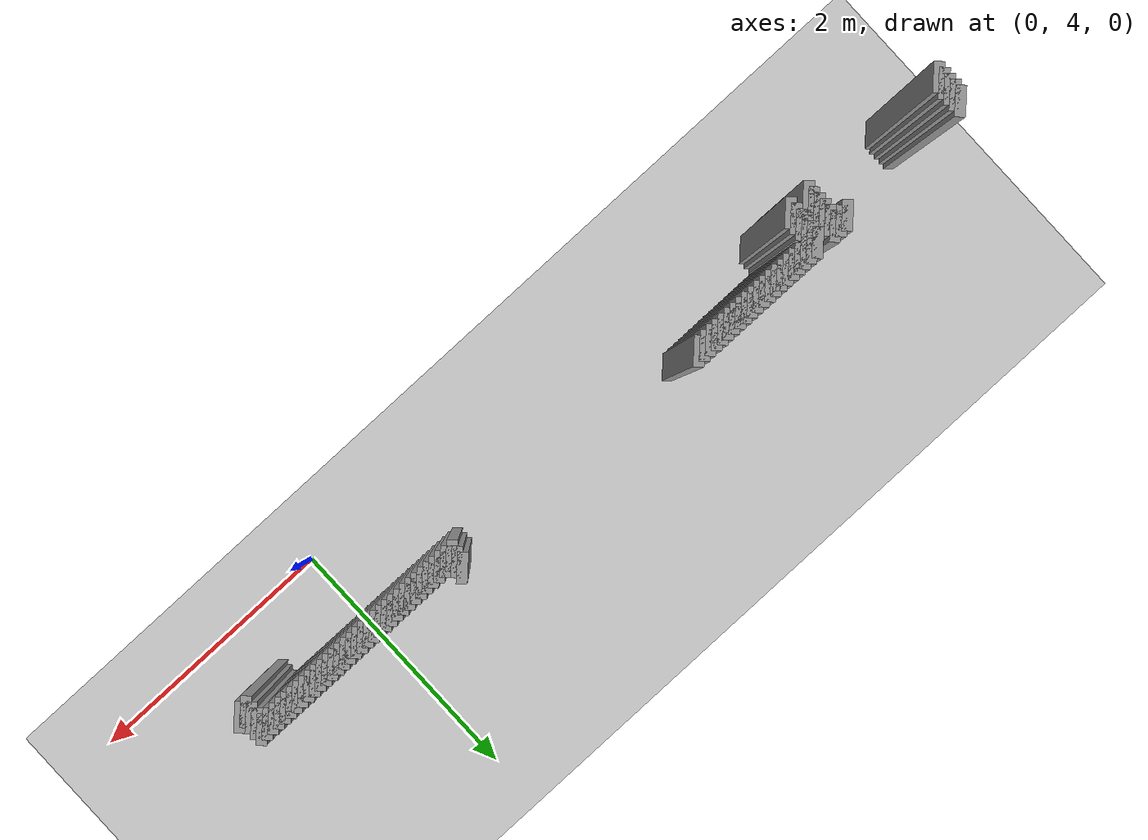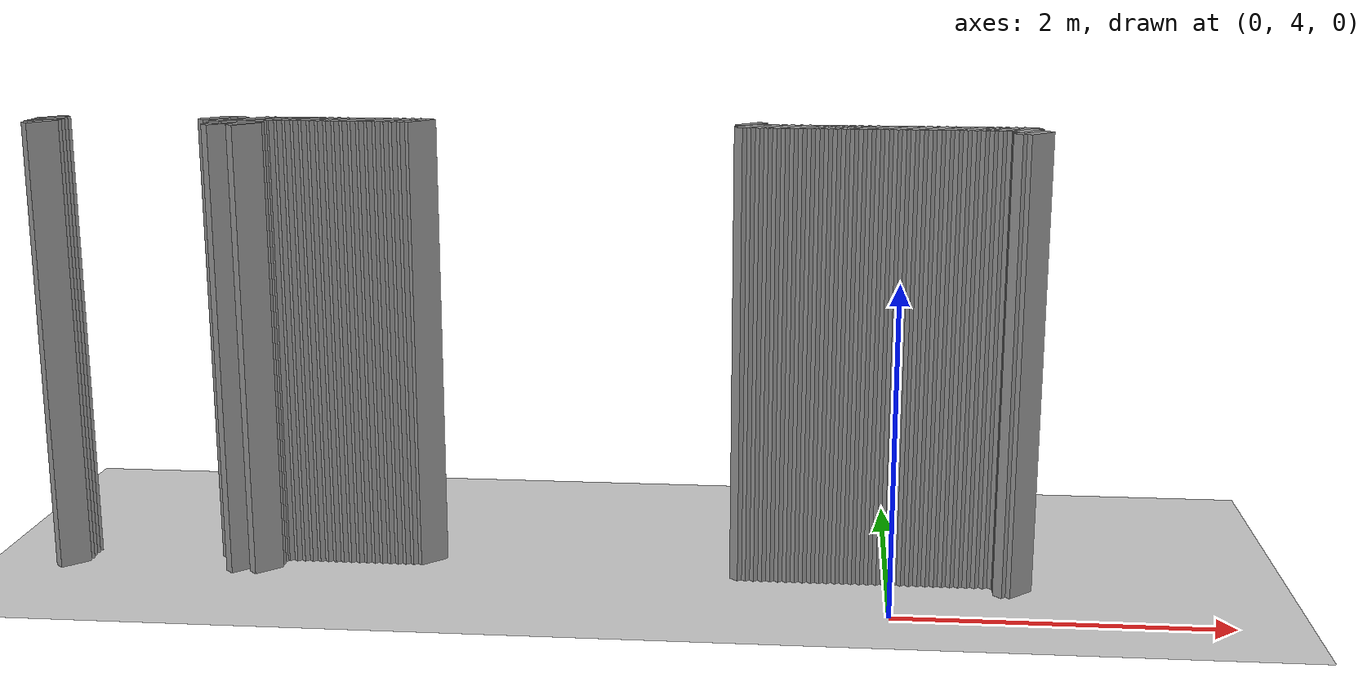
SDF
<sdf version="1.5">
 <world name="default">
  <include><uri>model://ground_plane</uri></include>
  <include><uri>model://sun</uri></include>
  <model name="grey_wall_80">
   <static>1</static>
   <link name="link">
    <pose>-4.125 4.725  1.4 0 0 -0.785398163397</pose>
    <collision name="collision"><geometry><box><size>0.0707106781187 .2  2.8</size></box></geometry></collision>
    <visual name="visual">
     <cast_shadows>0</cast_shadows>
     <geometry><box><size>0.0707106781187 .2  2.8</size></box></geometry>
     <material>
      <script>
       <uri>model://grey_wall/materials/scripts</uri>
       <uri>model://grey_wall/materials/textures</uri>
       <name>vrc/grey_wall</name>
      </script>
     </material>
    </visual>
   </link>
  </model>
  <model name="grey_wall_81">
   <static>1</static>
   <link name="link">
    <pose>-4.075 4.725  1.4 0 0 -0.785398163397</pose>
    <collision name="collision"><geometry><box><size>0.0707106781187 .2  2.8</size></box></geometry></collision>
    <visual name="visual">
     <cast_shadows>0</cast_shadows>
     <geometry><box><size>0.0707106781187 .2  2.8</size></box></geometry>
     <material>
      <script>
       <uri>model://grey_wall/materials/scripts</uri>
       <uri>model://grey_wall/materials/textures</uri>
       <name>vrc/grey_wall</name>
      </script>
     </material>
    </visual>
   </link>
  </model>
  <model name="grey_wall_82">
   <static>1</static>
   <link name="link">
    <pose>-4.025 4.725  1.4 0 0 -0.785398163397</pose>
    <collision name="collision"><geometry><box><size>0.0707106781187 .2  2.8</size></box></geometry></collision>
    <visual name="visual">
     <cast_shadows>0</cast_shadows>
     <geometry><box><size>0.0707106781187 .2  2.8</size></box></geometry>
     <material>
      <script>
       <uri>model://grey_wall/materials/scripts</uri>
       <uri>model://grey_wall/materials/textures</uri>
       <name>vrc/grey_wall</name>
      </script>
     </material>
    </visual>
   </link>
  </model>
  <model name="grey_wall_83">
   <static>1</static>
   <link name="link">
    <pose>-3.875 4.725  1.4 0 0 -0.785398163397</pose>
    <collision name="collision"><geometry><box><size>0.0707106781187 .2  2.8</size></box></geometry></collision>
    <visual name="visual">
     <cast_shadows>0</cast_shadows>
     <geometry><box><size>0.0707106781187 .2  2.8</size></box></geometry>
     <material>
      <script>
       <uri>model://grey_wall/materials/scripts</uri>
       <uri>model://grey_wall/materials/textures</uri>
       <name>vrc/grey_wall</name>
      </script>
     </material>
    </visual>
   </link>
  </model>
  <model name="grey_wall_84">
   <static>1</static>
   <link name="link">
    <pose>-3.825 4.725  1.4 0 0 -0.785398163397</pose>
    <collision name="collision"><geometry><box><size>0.0707106781187 .2  2.8</size></box></geometry></collision>
    <visual name="visual">
     <cast_shadows>0</cast_shadows>
     <geometry><box><size>0.0707106781187 .2  2.8</size></box></geometry>
     <material>
      <script>
       <uri>model://grey_wall/materials/scripts</uri>
       <uri>model://grey_wall/materials/textures</uri>
       <name>vrc/grey_wall</name>
      </script>
     </material>
    </visual>
   </link>
  </model>
  <model name="grey_wall_85">
   <static>1</static>
   <link name="link">
    <pose>-3.775 4.725  1.4 0 0 -0.785398163397</pose>
    <collision name="collision"><geometry><box><size>0.0707106781187 .2  2.8</size></box></geometry></collision>
    <visual name="visual">
     <cast_shadows>0</cast_shadows>
     <geometry><box><size>0.0707106781187 .2  2.8</size></box></geometry>
     <material>
      <script>
       <uri>model://grey_wall/materials/scripts</uri>
       <uri>model://grey_wall/materials/textures</uri>
       <name>vrc/grey_wall</name>
      </script>
     </material>
    </visual>
   </link>
  </model>
  <model name="grey_wall_86">
   <static>1</static>
   <link name="link">
    <pose>-3.725 4.725  1.4 0 0 -0.785398163397</pose>
    <collision name="collision"><geometry><box><size>0.0707106781187 .2  2.8</size></box></geometry></collision>
    <visual name="visual">
     <cast_shadows>0</cast_shadows>
     <geometry><box><size>0.0707106781187 .2  2.8</size></box></geometry>
     <material>
      <script>
       <uri>model://grey_wall/materials/scripts</uri>
       <uri>model://grey_wall/materials/textures</uri>
       <name>vrc/grey_wall</name>
      </script>
     </material>
    </visual>
   </link>
  </model>
  <model name="grey_wall_87">
   <static>1</static>
   <link name="link">
    <pose>-3.675 4.725  1.4 0 0 -0.785398163397</pose>
    <collision name="collision"><geometry><box><size>0.0707106781187 .2  2.8</size></box></geometry></collision>
    <visual name="visual">
     <cast_shadows>0</cast_shadows>
     <geometry><box><size>0.0707106781187 .2  2.8</size></box></geometry>
     <material>
      <script>
       <uri>model://grey_wall/materials/scripts</uri>
       <uri>model://grey_wall/materials/textures</uri>
       <name>vrc/grey_wall</name>
      </script>
     </material>
    </visual>
   </link>
  </model>
  <model name="grey_wall_88">
   <static>1</static>
   <link name="link">
    <pose>-3.625 4.725  1.4 0 0 -0.785398163397</pose>
    <collision name="collision"><geometry><box><size>0.0707106781187 .2  2.8</size></box></geometry></collision>
    <visual name="visual">
     <cast_shadows>0</cast_shadows>
     <geometry><box><size>0.0707106781187 .2  2.8</size></box></geometry>
     <material>
      <script>
       <uri>model://grey_wall/materials/scripts</uri>
       <uri>model://grey_wall/materials/textures</uri>
       <name>vrc/grey_wall</name>
      </script>
     </material>
    </visual>
   </link>
  </model>
  <model name="grey_wall_89">
   <static>1</static>
   <link name="link">
    <pose>-3.575 4.725  1.4 0 0 -0.785398163397</pose>
    <collision name="collision"><geometry><box><size>0.0707106781187 .2  2.8</size></box></geometry></collision>
    <visual name="visual">
     <cast_shadows>0</cast_shadows>
     <geometry><box><size>0.0707106781187 .2  2.8</size></box></geometry>
     <material>
      <script>
       <uri>model://grey_wall/materials/scripts</uri>
       <uri>model://grey_wall/materials/textures</uri>
       <name>vrc/grey_wall</name>
      </script>
     </material>
    </visual>
   </link>
  </model>
  <model name="grey_wall_90">
   <static>1</static>
   <link name="link">
    <pose>-3.525 4.725  1.4 0 0 -0.785398163397</pose>
    <collision name="collision"><geometry><box><size>0.0707106781187 .2  2.8</size></box></geometry></collision>
    <visual name="visual">
     <cast_shadows>0</cast_shadows>
     <geometry><box><size>0.0707106781187 .2  2.8</size></box></geometry>
     <material>
      <script>
       <uri>model://grey_wall/materials/scripts</uri>
       <uri>model://grey_wall/materials/textures</uri>
       <name>vrc/grey_wall</name>
      </script>
     </material>
    </visual>
   </link>
  </model>
  <model name="grey_wall_91">
   <static>1</static>
   <link name="link">
    <pose>-3.475 4.725  1.4 0 0 -0.785398163397</pose>
    <collision name="collision"><geometry><box><size>0.0707106781187 .2  2.8</size></box></geometry></collision>
    <visual name="visual">
     <cast_shadows>0</cast_shadows>
     <geometry><box><size>0.0707106781187 .2  2.8</size></box></geometry>
     <material>
      <script>
       <uri>model://grey_wall/materials/scripts</uri>
       <uri>model://grey_wall/materials/textures</uri>
       <name>vrc/grey_wall</name>
      </script>
     </material>
    </visual>
   </link>
  </model>
  <model name="grey_wall_92">
   <static>1</static>
   <link name="link">
    <pose>-3.425 4.725  1.4 0 0 -0.785398163397</pose>
    <collision name="collision"><geometry><box><size>0.0707106781187 .2  2.8</size></box></geometry></collision>
    <visual name="visual">
     <cast_shadows>0</cast_shadows>
     <geometry><box><size>0.0707106781187 .2  2.8</size></box></geometry>
     <material>
      <script>
       <uri>model://grey_wall/materials/scripts</uri>
       <uri>model://grey_wall/materials/textures</uri>
       <name>vrc/grey_wall</name>
      </script>
     </material>
    </visual>
   </link>
  </model>
  <model name="grey_wall_93">
   <static>1</static>
   <link name="link">
    <pose>-3.375 4.725  1.4 0 0 -0.785398163397</pose>
    <collision name="collision"><geometry><box><size>0.0707106781187 .2  2.8</size></box></geometry></collision>
    <visual name="visual">
     <cast_shadows>0</cast_shadows>
     <geometry><box><size>0.0707106781187 .2  2.8</size></box></geometry>
     <material>
      <script>
       <uri>model://grey_wall/materials/scripts</uri>
       <uri>model://grey_wall/materials/textures</uri>
       <name>vrc/grey_wall</name>
      </script>
     </material>
    </visual>
   </link>
  </model>
  <model name="grey_wall_94">
   <static>1</static>
   <link name="link">
    <pose>-3.325 4.725  1.4 0 0 -0.785398163397</pose>
    <collision name="collision"><geometry><box><size>0.0707106781187 .2  2.8</size></box></geometry></collision>
    <visual name="visual">
     <cast_shadows>0</cast_shadows>
     <geometry><box><size>0.0707106781187 .2  2.8</size></box></geometry>
     <material>
      <script>
       <uri>model://grey_wall/materials/scripts</uri>
       <uri>model://grey_wall/materials/textures</uri>
       <name>vrc/grey_wall</name>
      </script>
     </material>
    </visual>
   </link>
  </model>
  <model name="grey_wall_95">
   <static>1</static>
   <link name="link">
    <pose>-3.275 4.725  1.4 0 0 -0.785398163397</pose>
    <collision name="collision"><geometry><box><size>0.0707106781187 .2  2.8</size></box></geometry></collision>
    <visual name="visual">
     <cast_shadows>0</cast_shadows>
     <geometry><box><size>0.0707106781187 .2  2.8</size></box></geometry>
     <material>
      <script>
       <uri>model://grey_wall/materials/scripts</uri>
       <uri>model://grey_wall/materials/textures</uri>
       <name>vrc/grey_wall</name>
      </script>
     </material>
    </visual>
   </link>
  </model>
  <model name="grey_wall_96">
   <static>1</static>
   <link name="link">
    <pose>-3.225 4.725  1.4 0 0 -0.785398163397</pose>
    <collision name="collision"><geometry><box><size>0.0707106781187 .2  2.8</size></box></geometry></collision>
    <visual name="visual">
     <cast_shadows>0</cast_shadows>
     <geometry><box><size>0.0707106781187 .2  2.8</size></box></geometry>
     <material>
      <script>
       <uri>model://grey_wall/materials/scripts</uri>
       <uri>model://grey_wall/materials/textures</uri>
       <name>vrc/grey_wall</name>
      </script>
     </material>
    </visual>
   </link>
  </model>
  <model name="grey_wall_97">
   <static>1</static>
   <link name="link">
    <pose>-3.175 4.725  1.4 0 0 -0.785398163397</pose>
    <collision name="collision"><geometry><box><size>0.0707106781187 .2  2.8</size></box></geometry></collision>
    <visual name="visual">
     <cast_shadows>0</cast_shadows>
     <geometry><box><size>0.0707106781187 .2  2.8</size></box></geometry>
     <material>
      <script>
       <uri>model://grey_wall/materials/scripts</uri>
       <uri>model://grey_wall/materials/textures</uri>
       <name>vrc/grey_wall</name>
      </script>
     </material>
    </visual>
   </link>
  </model>
  <model name="grey_wall_98">
   <static>1</static>
   <link name="link">
    <pose>-3.125 4.725  1.4 0 0 -0.785398163397</pose>
    <collision name="collision"><geometry><box><size>0.0707106781187 .2  2.8</size></box></geometry></collision>
    <visual name="visual">
     <cast_shadows>0</cast_shadows>
     <geometry><box><size>0.0707106781187 .2  2.8</size></box></geometry>
     <material>
      <script>
       <uri>model://grey_wall/materials/scripts</uri>
       <uri>model://grey_wall/materials/textures</uri>
       <name>vrc/grey_wall</name>
      </script>
     </material>
    </visual>
   </link>
  </model>
  <model name="grey_wall_99">
   <static>1</static>
   <link name="link">
    <pose>-3.075 4.725  1.4 0 0 -0.785398163397</pose>
    <collision name="collision"><geometry><box><size>0.0707106781187 .2  2.8</size></box></geometry></collision>
    <visual name="visual">
     <cast_shadows>0</cast_shadows>
     <geometry><box><size>0.0707106781187 .2  2.8</size></box></geometry>
     <material>
      <script>
       <uri>model://grey_wall/materials/scripts</uri>
       <uri>model://grey_wall/materials/textures</uri>
       <name>vrc/grey_wall</name>
      </script>
     </material>
    </visual>
   </link>
  </model>
  <model name="grey_wall_100">
   <static>1</static>
   <link name="link">
    <pose>-3.025 4.725  1.4 0 0 -0.785398163397</pose>
    <collision name="collision"><geometry><box><size>0.0707106781187 .2  2.8</size></box></geometry></collision>
    <visual name="visual">
     <cast_shadows>0</cast_shadows>
     <geometry><box><size>0.0707106781187 .2  2.8</size></box></geometry>
     <material>
      <script>
       <uri>model://grey_wall/materials/scripts</uri>
       <uri>model://grey_wall/materials/textures</uri>
       <name>vrc/grey_wall</name>
      </script>
     </material>
    </visual>
   </link>
  </model>
  <model name="grey_wall_101">
   <static>1</static>
   <link name="link">
    <pose>-2.975 4.725  1.4 0 0 -0.785398163397</pose>
    <collision name="collision"><geometry><box><size>0.0707106781187 .2  2.8</size></box></geometry></collision>
    <visual name="visual">
     <cast_shadows>0</cast_shadows>
     <geometry><box><size>0.0707106781187 .2  2.8</size></box></geometry>
     <material>
      <script>
       <uri>model://grey_wall/materials/scripts</uri>
       <uri>model://grey_wall/materials/textures</uri>
       <name>vrc/grey_wall</name>
      </script>
     </material>
    </visual>
   </link>
  </model>
  <model name="grey_wall_102">
   <static>1</static>
   <link name="link">
    <pose>-2.925 4.725  1.4 0 0 -0.785398163397</pose>
    <collision name="collision"><geometry><box><size>0.0707106781187 .2  2.8</size></box></geometry></collision>
    <visual name="visual">
     <cast_shadows>0</cast_shadows>
     <geometry><box><size>0.0707106781187 .2  2.8</size></box></geometry>
     <material>
      <script>
       <uri>model://grey_wall/materials/scripts</uri>
       <uri>model://grey_wall/materials/textures</uri>
       <name>vrc/grey_wall</name>
      </script>
     </material>
    </visual>
   </link>
  </model>
  <model name="grey_wall_103">
   <static>1</static>
   <link name="link">
    <pose>-2.875 4.725  1.4 0 0 -0.785398163397</pose>
    <collision name="collision"><geometry><box><size>0.0707106781187 .2  2.8</size></box></geometry></collision>
    <visual name="visual">
     <cast_shadows>0</cast_shadows>
     <geometry><box><size>0.0707106781187 .2  2.8</size></box></geometry>
     <material>
      <script>
       <uri>model://grey_wall/materials/scripts</uri>
       <uri>model://grey_wall/materials/textures</uri>
       <name>vrc/grey_wall</name>
      </script>
     </material>
    </visual>
   </link>
  </model>
  <model name="grey_wall_104">
   <static>1</static>
   <link name="link">
    <pose>-0.875 4.725  1.4 0 0 -0.785398163397</pose>
    <collision name="collision"><geometry><box><size>0.0707106781187 .2  2.8</size></box></geometry></collision>
    <visual name="visual">
     <cast_shadows>0</cast_shadows>
     <geometry><box><size>0.0707106781187 .2  2.8</size></box></geometry>
     <material>
      <script>
       <uri>model://grey_wall/materials/scripts</uri>
       <uri>model://grey_wall/materials/textures</uri>
       <name>vrc/grey_wall</name>
      </script>
     </material>
    </visual>
   </link>
  </model>
  <model name="grey_wall_105">
   <static>1</static>
   <link name="link">
    <pose>-5.125 4.675  1.4 0 0 -0.785398163397</pose>
    <collision name="collision"><geometry><box><size>0.0707106781187 .2  2.8</size></box></geometry></collision>
    <visual name="visual">
     <cast_shadows>0</cast_shadows>
     <geometry><box><size>0.0707106781187 .2  2.8</size></box></geometry>
     <material>
      <script>
       <uri>model://grey_wall/materials/scripts</uri>
       <uri>model://grey_wall/materials/textures</uri>
       <name>vrc/grey_wall</name>
      </script>
     </material>
    </visual>
   </link>
  </model>
  <model name="grey_wall_106">
   <static>1</static>
   <link name="link">
    <pose>-4.025 4.675  1.4 0 0 -0.785398163397</pose>
    <collision name="collision"><geometry><box><size>0.0707106781187 .2  2.8</size></box></geometry></collision>
    <visual name="visual">
     <cast_shadows>0</cast_shadows>
     <geometry><box><size>0.0707106781187 .2  2.8</size></box></geometry>
     <material>
      <script>
       <uri>model://grey_wall/materials/scripts</uri>
       <uri>model://grey_wall/materials/textures</uri>
       <name>vrc/grey_wall</name>
      </script>
     </material>
    </visual>
   </link>
  </model>
  <model name="grey_wall_107">
   <static>1</static>
   <link name="link">
    <pose>-3.875 4.675  1.4 0 0 -0.785398163397</pose>
    <collision name="collision"><geometry><box><size>0.0707106781187 .2  2.8</size></box></geometry></collision>
    <visual name="visual">
     <cast_shadows>0</cast_shadows>
     <geometry><box><size>0.0707106781187 .2  2.8</size></box></geometry>
     <material>
      <script>
       <uri>model://grey_wall/materials/scripts</uri>
       <uri>model://grey_wall/materials/textures</uri>
       <name>vrc/grey_wall</name>
      </script>
     </material>
    </visual>
   </link>
  </model>
  <model name="grey_wall_108">
   <static>1</static>
   <link name="link">
    <pose>-0.875 4.675  1.4 0 0 -0.785398163397</pose>
    <collision name="collision"><geometry><box><size>0.0707106781187 .2  2.8</size></box></geometry></collision>
    <visual name="visual">
     <cast_shadows>0</cast_shadows>
     <geometry><box><size>0.0707106781187 .2  2.8</size></box></geometry>
     <material>
      <script>
       <uri>model://grey_wall/materials/scripts</uri>
       <uri>model://grey_wall/materials/textures</uri>
       <name>vrc/grey_wall</name>
      </script>
     </material>
    </visual>
   </link>
  </model>
  <model name="grey_wall_109">
   <static>1</static>
   <link name="link">
    <pose>-5.125 4.625  1.4 0 0 -0.785398163397</pose>
    <collision name="collision"><geometry><box><size>0.0707106781187 .2  2.8</size></box></geometry></collision>
    <visual name="visual">
     <cast_shadows>0</cast_shadows>
     <geometry><box><size>0.0707106781187 .2  2.8</size></box></geometry>
     <material>
      <script>
       <uri>model://grey_wall/materials/scripts</uri>
       <uri>model://grey_wall/materials/textures</uri>
       <name>vrc/grey_wall</name>
      </script>
     </material>
    </visual>
   </link>
  </model>
  <model name="grey_wall_110">
   <static>1</static>
   <link name="link">
    <pose>-4.025 4.625  1.4 0 0 -0.785398163397</pose>
    <collision name="collision"><geometry><box><size>0.0707106781187 .2  2.8</size></box></geometry></collision>
    <visual name="visual">
     <cast_shadows>0</cast_shadows>
     <geometry><box><size>0.0707106781187 .2  2.8</size></box></geometry>
     <material>
      <script>
       <uri>model://grey_wall/materials/scripts</uri>
       <uri>model://grey_wall/materials/textures</uri>
       <name>vrc/grey_wall</name>
      </script>
     </material>
    </visual>
   </link>
  </model>
  <model name="grey_wall_111">
   <static>1</static>
   <link name="link">
    <pose>-3.875 4.625  1.4 0 0 -0.785398163397</pose>
    <collision name="collision"><geometry><box><size>0.0707106781187 .2  2.8</size></box></geometry></collision>
    <visual name="visual">
     <cast_shadows>0</cast_shadows>
     <geometry><box><size>0.0707106781187 .2  2.8</size></box></geometry>
     <material>
      <script>
       <uri>model://grey_wall/materials/scripts</uri>
       <uri>model://grey_wall/materials/textures</uri>
       <name>vrc/grey_wall</name>
      </script>
     </material>
    </visual>
   </link>
  </model>
  <model name="grey_wall_112">
   <static>1</static>
   <link name="link">
    <pose>-0.875 4.625  1.4 0 0 -0.785398163397</pose>
    <collision name="collision"><geometry><box><size>0.0707106781187 .2  2.8</size></box></geometry></collision>
    <visual name="visual">
     <cast_shadows>0</cast_shadows>
     <geometry><box><size>0.0707106781187 .2  2.8</size></box></geometry>
     <material>
      <script>
       <uri>model://grey_wall/materials/scripts</uri>
       <uri>model://grey_wall/materials/textures</uri>
       <name>vrc/grey_wall</name>
      </script>
     </material>
    </visual>
   </link>
  </model>
  <model name="grey_wall_113">
   <static>1</static>
   <link name="link">
    <pose>-0.825 4.625  1.4 0 0 -0.785398163397</pose>
    <collision name="collision"><geometry><box><size>0.0707106781187 .2  2.8</size></box></geometry></collision>
    <visual name="visual">
     <cast_shadows>0</cast_shadows>
     <geometry><box><size>0.0707106781187 .2  2.8</size></box></geometry>
     <material>
      <script>
       <uri>model://grey_wall/materials/scripts</uri>
       <uri>model://grey_wall/materials/textures</uri>
       <name>vrc/grey_wall</name>
      </script>
     </material>
    </visual>
   </link>
  </model>
  <model name="grey_wall_114">
   <static>1</static>
   <link name="link">
    <pose>-0.775 4.625  1.4 0 0 -0.785398163397</pose>
    <collision name="collision"><geometry><box><size>0.0707106781187 .2  2.8</size></box></geometry></collision>
    <visual name="visual">
     <cast_shadows>0</cast_shadows>
     <geometry><box><size>0.0707106781187 .2  2.8</size></box></geometry>
     <material>
      <script>
       <uri>model://grey_wall/materials/scripts</uri>
       <uri>model://grey_wall/materials/textures</uri>
       <name>vrc/grey_wall</name>
      </script>
     </material>
    </visual>
   </link>
  </model>
  <model name="grey_wall_115">
   <static>1</static>
   <link name="link">
    <pose>-0.725 4.625  1.4 0 0 -0.785398163397</pose>
    <collision name="collision"><geometry><box><size>0.0707106781187 .2  2.8</size></box></geometry></collision>
    <visual name="visual">
     <cast_shadows>0</cast_shadows>
     <geometry><box><size>0.0707106781187 .2  2.8</size></box></geometry>
     <material>
      <script>
       <uri>model://grey_wall/materials/scripts</uri>
       <uri>model://grey_wall/materials/textures</uri>
       <name>vrc/grey_wall</name>
      </script>
     </material>
    </visual>
   </link>
  </model>
  <model name="grey_wall_116">
   <static>1</static>
   <link name="link">
    <pose>-0.675 4.625  1.4 0 0 -0.785398163397</pose>
    <collision name="collision"><geometry><box><size>0.0707106781187 .2  2.8</size></box></geometry></collision>
    <visual name="visual">
     <cast_shadows>0</cast_shadows>
     <geometry><box><size>0.0707106781187 .2  2.8</size></box></geometry>
     <material>
      <script>
       <uri>model://grey_wall/materials/scripts</uri>
       <uri>model://grey_wall/materials/textures</uri>
       <name>vrc/grey_wall</name>
      </script>
     </material>
    </visual>
   </link>
  </model>
  <model name="grey_wall_117">
   <static>1</static>
   <link name="link">
    <pose>-0.625 4.625  1.4 0 0 -0.785398163397</pose>
    <collision name="collision"><geometry><box><size>0.0707106781187 .2  2.8</size></box></geometry></collision>
    <visual name="visual">
     <cast_shadows>0</cast_shadows>
     <geometry><box><size>0.0707106781187 .2  2.8</size></box></geometry>
     <material>
      <script>
       <uri>model://grey_wall/materials/scripts</uri>
       <uri>model://grey_wall/materials/textures</uri>
       <name>vrc/grey_wall</name>
      </script>
     </material>
    </visual>
   </link>
  </model>
  <model name="grey_wall_118">
   <static>1</static>
   <link name="link">
    <pose>-0.575 4.625  1.4 0 0 -0.785398163397</pose>
    <collision name="collision"><geometry><box><size>0.0707106781187 .2  2.8</size></box></geometry></collision>
    <visual name="visual">
     <cast_shadows>0</cast_shadows>
     <geometry><box><size>0.0707106781187 .2  2.8</size></box></geometry>
     <material>
      <script>
       <uri>model://grey_wall/materials/scripts</uri>
       <uri>model://grey_wall/materials/textures</uri>
       <name>vrc/grey_wall</name>
      </script>
     </material>
    </visual>
   </link>
  </model>
  <model name="grey_wall_119">
   <static>1</static>
   <link name="link">
    <pose>-0.525 4.625  1.4 0 0 -0.785398163397</pose>
    <collision name="collision"><geometry><box><size>0.0707106781187 .2  2.8</size></box></geometry></collision>
    <visual name="visual">
     <cast_shadows>0</cast_shadows>
     <geometry><box><size>0.0707106781187 .2  2.8</size></box></geometry>
     <material>
      <script>
       <uri>model://grey_wall/materials/scripts</uri>
       <uri>model://grey_wall/materials/textures</uri>
       <name>vrc/grey_wall</name>
      </script>
     </material>
    </visual>
   </link>
  </model>
  <model name="grey_wall_120">
   <static>1</static>
   <link name="link">
    <pose>-0.475 4.625  1.4 0 0 -0.785398163397</pose>
    <collision name="collision"><geometry><box><size>0.0707106781187 .2  2.8</size></box></geometry></collision>
    <visual name="visual">
     <cast_shadows>0</cast_shadows>
     <geometry><box><size>0.0707106781187 .2  2.8</size></box></geometry>
     <material>
      <script>
       <uri>model://grey_wall/materials/scripts</uri>
       <uri>model://grey_wall/materials/textures</uri>
       <name>vrc/grey_wall</name>
      </script>
     </material>
    </visual>
   </link>
  </model>
  <model name="grey_wall_121">
   <static>1</static>
   <link name="link">
    <pose>-0.425 4.625  1.4 0 0 -0.785398163397</pose>
    <collision name="collision"><geometry><box><size>0.0707106781187 .2  2.8</size></box></geometry></collision>
    <visual name="visual">
     <cast_shadows>0</cast_shadows>
     <geometry><box><size>0.0707106781187 .2  2.8</size></box></geometry>
     <material>
      <script>
       <uri>model://grey_wall/materials/scripts</uri>
       <uri>model://grey_wall/materials/textures</uri>
       <name>vrc/grey_wall</name>
      </script>
     </material>
    </visual>
   </link>
  </model>
  <model name="grey_wall_122">
   <static>1</static>
   <link name="link">
    <pose>-0.375 4.625  1.4 0 0 -0.785398163397</pose>
    <collision name="collision"><geometry><box><size>0.0707106781187 .2  2.8</size></box></geometry></collision>
    <visual name="visual">
     <cast_shadows>0</cast_shadows>
     <geometry><box><size>0.0707106781187 .2  2.8</size></box></geometry>
     <material>
      <script>
       <uri>model://grey_wall/materials/scripts</uri>
       <uri>model://grey_wall/materials/textures</uri>
       <name>vrc/grey_wall</name>
      </script>
     </material>
    </visual>
   </link>
  </model>
  <model name="grey_wall_123">
   <static>1</static>
   <link name="link">
    <pose>-0.325 4.625  1.4 0 0 -0.785398163397</pose>
    <collision name="collision"><geometry><box><size>0.0707106781187 .2  2.8</size></box></geometry></collision>
    <visual name="visual">
     <cast_shadows>0</cast_shadows>
     <geometry><box><size>0.0707106781187 .2  2.8</size></box></geometry>
     <material>
      <script>
       <uri>model://grey_wall/materials/scripts</uri>
       <uri>model://grey_wall/materials/textures</uri>
       <name>vrc/grey_wall</name>
      </script>
     </material>
    </visual>
   </link>
  </model>
  <model name="grey_wall_124">
   <static>1</static>
   <link name="link">
    <pose>-0.275 4.625  1.4 0 0 -0.785398163397</pose>
    <collision name="collision"><geometry><box><size>0.0707106781187 .2  2.8</size></box></geometry></collision>
    <visual name="visual">
     <cast_shadows>0</cast_shadows>
     <geometry><box><size>0.0707106781187 .2  2.8</size></box></geometry>
     <material>
      <script>
       <uri>model://grey_wall/materials/scripts</uri>
       <uri>model://grey_wall/materials/textures</uri>
       <name>vrc/grey_wall</name>
      </script>
     </material>
    </visual>
   </link>
  </model>
  <model name="grey_wall_125">
   <static>1</static>
   <link name="link">
    <pose>-0.225 4.625  1.4 0 0 -0.785398163397</pose>
    <collision name="collision"><geometry><box><size>0.0707106781187 .2  2.8</size></box></geometry></collision>
    <visual name="visual">
     <cast_shadows>0</cast_shadows>
     <geometry><box><size>0.0707106781187 .2  2.8</size></box></geometry>
     <material>
      <script>
       <uri>model://grey_wall/materials/scripts</uri>
       <uri>model://grey_wall/materials/textures</uri>
       <name>vrc/grey_wall</name>
      </script>
     </material>
    </visual>
   </link>
  </model>
  <model name="grey_wall_126">
   <static>1</static>
   <link name="link">
    <pose>-0.175 4.625  1.4 0 0 -0.785398163397</pose>
    <collision name="collision"><geometry><box><size>0.0707106781187 .2  2.8</size></box></geometry></collision>
    <visual name="visual">
     <cast_shadows>0</cast_shadows>
     <geometry><box><size>0.0707106781187 .2  2.8</size></box></geometry>
     <material>
      <script>
       <uri>model://grey_wall/materials/scripts</uri>
       <uri>model://grey_wall/materials/textures</uri>
       <name>vrc/grey_wall</name>
      </script>
     </material>
    </visual>
   </link>
  </model>
  <model name="grey_wall_127">
   <static>1</static>
   <link name="link">
    <pose>-0.125 4.625  1.4 0 0 -0.785398163397</pose>
    <collision name="collision"><geometry><box><size>0.0707106781187 .2  2.8</size></box></geometry></collision>
    <visual name="visual">
     <cast_shadows>0</cast_shadows>
     <geometry><box><size>0.0707106781187 .2  2.8</size></box></geometry>
     <material>
      <script>
       <uri>model://grey_wall/materials/scripts</uri>
       <uri>model://grey_wall/materials/textures</uri>
       <name>vrc/grey_wall</name>
      </script>
     </material>
    </visual>
   </link>
  </model>
  <model name="grey_wall_128">
   <static>1</static>
   <link name="link">
    <pose>-0.075 4.625  1.4 0 0 -0.785398163397</pose>
    <collision name="collision"><geometry><box><size>0.0707106781187 .2  2.8</size></box></geometry></collision>
    <visual name="visual">
     <cast_shadows>0</cast_shadows>
     <geometry><box><size>0.0707106781187 .2  2.8</size></box></geometry>
     <material>
      <script>
       <uri>model://grey_wall/materials/scripts</uri>
       <uri>model://grey_wall/materials/textures</uri>
       <name>vrc/grey_wall</name>
      </script>
     </material>
    </visual>
   </link>
  </model>
  <model name="grey_wall_129">
   <static>1</static>
   <link name="link">
    <pose>-0.025 4.625  1.4 0 0 -0.785398163397</pose>
    <collision name="collision"><geometry><box><size>0.0707106781187 .2  2.8</size></box></geometry></collision>
    <visual name="visual">
     <cast_shadows>0</cast_shadows>
     <geometry><box><size>0.0707106781187 .2  2.8</size></box></geometry>
     <material>
      <script>
       <uri>model://grey_wall/materials/scripts</uri>
       <uri>model://grey_wall/materials/textures</uri>
       <name>vrc/grey_wall</name>
      </script>
     </material>
    </visual>
   </link>
  </model>
  <model name="grey_wall_130">
   <static>1</static>
   <link name="link">
    <pose>0.025 4.625  1.4 0 0 -0.785398163397</pose>
    <collision name="collision"><geometry><box><size>0.0707106781187 .2  2.8</size></box></geometry></collision>
    <visual name="visual">
     <cast_shadows>0</cast_shadows>
     <geometry><box><size>0.0707106781187 .2  2.8</size></box></geometry>
     <material>
      <script>
       <uri>model://grey_wall/materials/scripts</uri>
       <uri>model://grey_wall/materials/textures</uri>
       <name>vrc/grey_wall</name>
      </script>
     </material>
    </visual>
   </link>
  </model>
  <model name="grey_wall_131">
   <static>1</static>
   <link name="link">
    <pose>0.075 4.625  1.4 0 0 -0.785398163397</pose>
    <collision name="collision"><geometry><box><size>0.0707106781187 .2  2.8</size></box></geometry></collision>
    <visual name="visual">
     <cast_shadows>0</cast_shadows>
     <geometry><box><size>0.0707106781187 .2  2.8</size></box></geometry>
     <material>
      <script>
       <uri>model://grey_wall/materials/scripts</uri>
       <uri>model://grey_wall/materials/textures</uri>
       <name>vrc/grey_wall</name>
      </script>
     </material>
    </visual>
   </link>
  </model>
  <model name="grey_wall_132">
   <static>1</static>
   <link name="link">
    <pose>0.125 4.625  1.4 0 0 -0.785398163397</pose>
    <collision name="collision"><geometry><box><size>0.0707106781187 .2  2.8</size></box></geometry></collision>
    <visual name="visual">
     <cast_shadows>0</cast_shadows>
     <geometry><box><size>0.0707106781187 .2  2.8</size></box></geometry>
     <material>
      <script>
       <uri>model://grey_wall/materials/scripts</uri>
       <uri>model://grey_wall/materials/textures</uri>
       <name>vrc/grey_wall</name>
      </script>
     </material>
    </visual>
   </link>
  </model>
  <model name="grey_wall_133">
   <static>1</static>
   <link name="link">
    <pose>0.175 4.625  1.4 0 0 -0.785398163397</pose>
    <collision name="collision"><geometry><box><size>0.0707106781187 .2  2.8</size></box></geometry></collision>
    <visual name="visual">
     <cast_shadows>0</cast_shadows>
     <geometry><box><size>0.0707106781187 .2  2.8</size></box></geometry>
     <material>
      <script>
       <uri>model://grey_wall/materials/scripts</uri>
       <uri>model://grey_wall/materials/textures</uri>
       <name>vrc/grey_wall</name>
      </script>
     </material>
    </visual>
   </link>
  </model>
  <model name="grey_wall_134">
   <static>1</static>
   <link name="link">
    <pose>0.225 4.625  1.4 0 0 -0.785398163397</pose>
    <collision name="collision"><geometry><box><size>0.0707106781187 .2  2.8</size></box></geometry></collision>
    <visual name="visual">
     <cast_shadows>0</cast_shadows>
     <geometry><box><size>0.0707106781187 .2  2.8</size></box></geometry>
     <material>
      <script>
       <uri>model://grey_wall/materials/scripts</uri>
       <uri>model://grey_wall/materials/textures</uri>
       <name>vrc/grey_wall</name>
      </script>
     </material>
    </visual>
   </link>
  </model>
  <model name="grey_wall_135">
   <static>1</static>
   <link name="link">
    <pose>0.275 4.625  1.4 0 0 -0.785398163397</pose>
    <collision name="collision"><geometry><box><size>0.0707106781187 .2  2.8</size></box></geometry></collision>
    <visual name="visual">
     <cast_shadows>0</cast_shadows>
     <geometry><box><size>0.0707106781187 .2  2.8</size></box></geometry>
     <material>
      <script>
       <uri>model://grey_wall/materials/scripts</uri>
       <uri>model://grey_wall/materials/textures</uri>
       <name>vrc/grey_wall</name>
      </script>
     </material>
    </visual>
   </link>
  </model>
  <model name="grey_wall_136">
   <static>1</static>
   <link name="link">
    <pose>0.325 4.625  1.4 0 0 -0.785398163397</pose>
    <collision name="collision"><geometry><box><size>0.0707106781187 .2  2.8</size></box></geometry></collision>
    <visual name="visual">
     <cast_shadows>0</cast_shadows>
     <geometry><box><size>0.0707106781187 .2  2.8</size></box></geometry>
     <material>
      <script>
       <uri>model://grey_wall/materials/scripts</uri>
       <uri>model://grey_wall/materials/textures</uri>
       <name>vrc/grey_wall</name>
      </script>
     </material>
    </visual>
   </link>
  </model>
  <model name="grey_wall_137">
   <static>1</static>
   <link name="link">
    <pose>0.375 4.625  1.4 0 0 -0.785398163397</pose>
    <collision name="collision"><geometry><box><size>0.0707106781187 .2  2.8</size></box></geometry></collision>
    <visual name="visual">
     <cast_shadows>0</cast_shadows>
     <geometry><box><size>0.0707106781187 .2  2.8</size></box></geometry>
     <material>
      <script>
       <uri>model://grey_wall/materials/scripts</uri>
       <uri>model://grey_wall/materials/textures</uri>
       <name>vrc/grey_wall</name>
      </script>
     </material>
    </visual>
   </link>
  </model>
  <model name="grey_wall_138">
   <static>1</static>
   <link name="link">
    <pose>0.425 4.625  1.4 0 0 -0.785398163397</pose>
    <collision name="collision"><geometry><box><size>0.0707106781187 .2  2.8</size></box></geometry></collision>
    <visual name="visual">
     <cast_shadows>0</cast_shadows>
     <geometry><box><size>0.0707106781187 .2  2.8</size></box></geometry>
     <material>
      <script>
       <uri>model://grey_wall/materials/scripts</uri>
       <uri>model://grey_wall/materials/textures</uri>
       <name>vrc/grey_wall</name>
      </script>
     </material>
    </visual>
   </link>
  </model>
  <model name="grey_wall_139">
   <static>1</static>
   <link name="link">
    <pose>0.475 4.625  1.4 0 0 -0.785398163397</pose>
    <collision name="collision"><geometry><box><size>0.0707106781187 .2  2.8</size></box></geometry></collision>
    <visual name="visual">
     <cast_shadows>0</cast_shadows>
     <geometry><box><size>0.0707106781187 .2  2.8</size></box></geometry>
     <material>
      <script>
       <uri>model://grey_wall/materials/scripts</uri>
       <uri>model://grey_wall/materials/textures</uri>
       <name>vrc/grey_wall</name>
      </script>
     </material>
    </visual>
   </link>
  </model>
  <model name="grey_wall_140">
   <static>1</static>
   <link name="link">
    <pose>0.525 4.625  1.4 0 0 -0.785398163397</pose>
    <collision name="collision"><geometry><box><size>0.0707106781187 .2  2.8</size></box></geometry></collision>
    <visual name="visual">
     <cast_shadows>0</cast_shadows>
     <geometry><box><size>0.0707106781187 .2  2.8</size></box></geometry>
     <material>
      <script>
       <uri>model://grey_wall/materials/scripts</uri>
       <uri>model://grey_wall/materials/textures</uri>
       <name>vrc/grey_wall</name>
      </script>
     </material>
    </visual>
   </link>
  </model>
  <model name="grey_wall_141">
   <static>1</static>
   <link name="link">
    <pose>0.575 4.625  1.4 0 0 -0.785398163397</pose>
    <collision name="collision"><geometry><box><size>0.0707106781187 .2  2.8</size></box></geometry></collision>
    <visual name="visual">
     <cast_shadows>0</cast_shadows>
     <geometry><box><size>0.0707106781187 .2  2.8</size></box></geometry>
     <material>
      <script>
       <uri>model://grey_wall/materials/scripts</uri>
       <uri>model://grey_wall/materials/textures</uri>
       <name>vrc/grey_wall</name>
      </script>
     </material>
    </visual>
   </link>
  </model>
  <model name="grey_wall_142">
   <static>1</static>
   <link name="link">
    <pose>0.625 4.625  1.4 0 0 -0.785398163397</pose>
    <collision name="collision"><geometry><box><size>0.0707106781187 .2  2.8</size></box></geometry></collision>
    <visual name="visual">
     <cast_shadows>0</cast_shadows>
     <geometry><box><size>0.0707106781187 .2  2.8</size></box></geometry>
     <material>
      <script>
       <uri>model://grey_wall/materials/scripts</uri>
       <uri>model://grey_wall/materials/textures</uri>
       <name>vrc/grey_wall</name>
      </script>
     </material>
    </visual>
   </link>
  </model>
  <model name="grey_wall_143">
   <static>1</static>
   <link name="link">
    <pose>0.675 4.625  1.4 0 0 -0.785398163397</pose>
    <collision name="collision"><geometry><box><size>0.0707106781187 .2  2.8</size></box></geometry></collision>
    <visual name="visual">
     <cast_shadows>0</cast_shadows>
     <geometry><box><size>0.0707106781187 .2  2.8</size></box></geometry>
     <material>
      <script>
       <uri>model://grey_wall/materials/scripts</uri>
       <uri>model://grey_wall/materials/textures</uri>
       <name>vrc/grey_wall</name>
      </script>
     </material>
    </visual>
   </link>
  </model>
  <model name="grey_wall_144">
   <static>1</static>
   <link name="link">
    <pose>0.725 4.625  1.4 0 0 -0.785398163397</pose>
    <collision name="collision"><geometry><box><size>0.0707106781187 .2  2.8</size></box></geometry></collision>
    <visual name="visual">
     <cast_shadows>0</cast_shadows>
     <geometry><box><size>0.0707106781187 .2  2.8</size></box></geometry>
     <material>
      <script>
       <uri>model://grey_wall/materials/scripts</uri>
       <uri>model://grey_wall/materials/textures</uri>
       <name>vrc/grey_wall</name>
      </script>
     </material>
    </visual>
   </link>
  </model>
  <model name="grey_wall_145">
   <static>1</static>
   <link name="link">
    <pose>-5.125 4.575  1.4 0 0 -0.785398163397</pose>
    <collision name="collision"><geometry><box><size>0.0707106781187 .2  2.8</size></box></geometry></collision>
    <visual name="visual">
     <cast_shadows>0</cast_shadows>
     <geometry><box><size>0.0707106781187 .2  2.8</size></box></geometry>
     <material>
      <script>
       <uri>model://grey_wall/materials/scripts</uri>
       <uri>model://grey_wall/materials/textures</uri>
       <name>vrc/grey_wall</name>
      </script>
     </material>
    </visual>
   </link>
  </model>
  <model name="grey_wall_146">
   <static>1</static>
   <link name="link">
    <pose>-4.025 4.575  1.4 0 0 -0.785398163397</pose>
    <collision name="collision"><geometry><box><size>0.0707106781187 .2  2.8</size></box></geometry></collision>
    <visual name="visual">
     <cast_shadows>0</cast_shadows>
     <geometry><box><size>0.0707106781187 .2  2.8</size></box></geometry>
     <material>
      <script>
       <uri>model://grey_wall/materials/scripts</uri>
       <uri>model://grey_wall/materials/textures</uri>
       <name>vrc/grey_wall</name>
      </script>
     </material>
    </visual>
   </link>
  </model>
  <model name="grey_wall_147">
   <static>1</static>
   <link name="link">
    <pose>-3.875 4.575  1.4 0 0 -0.785398163397</pose>
    <collision name="collision"><geometry><box><size>0.0707106781187 .2  2.8</size></box></geometry></collision>
    <visual name="visual">
     <cast_shadows>0</cast_shadows>
     <geometry><box><size>0.0707106781187 .2  2.8</size></box></geometry>
     <material>
      <script>
       <uri>model://grey_wall/materials/scripts</uri>
       <uri>model://grey_wall/materials/textures</uri>
       <name>vrc/grey_wall</name>
      </script>
     </material>
    </visual>
   </link>
  </model>
  <model name="grey_wall_148">
   <static>1</static>
   <link name="link">
    <pose>0.725 4.575  1.4 0 0 -0.785398163397</pose>
    <collision name="collision"><geometry><box><size>0.0707106781187 .2  2.8</size></box></geometry></collision>
    <visual name="visual">
     <cast_shadows>0</cast_shadows>
     <geometry><box><size>0.0707106781187 .2  2.8</size></box></geometry>
     <material>
      <script>
       <uri>model://grey_wall/materials/scripts</uri>
       <uri>model://grey_wall/materials/textures</uri>
       <name>vrc/grey_wall</name>
      </script>
     </material>
    </visual>
   </link>
  </model>
  <model name="grey_wall_149">
   <static>1</static>
   <link name="link">
    <pose>-5.125 4.525  1.4 0 0 -0.785398163397</pose>
    <collision name="collision"><geometry><box><size>0.0707106781187 .2  2.8</size></box></geometry></collision>
    <visual name="visual">
     <cast_shadows>0</cast_shadows>
     <geometry><box><size>0.0707106781187 .2  2.8</size></box></geometry>
     <material>
      <script>
       <uri>model://grey_wall/materials/scripts</uri>
       <uri>model://grey_wall/materials/textures</uri>
       <name>vrc/grey_wall</name>
      </script>
     </material>
    </visual>
   </link>
  </model>
  <model name="grey_wall_150">
   <static>1</static>
   <link name="link">
    <pose>-4.025 4.525  1.4 0 0 -0.785398163397</pose>
    <collision name="collision"><geometry><box><size>0.0707106781187 .2  2.8</size></box></geometry></collision>
    <visual name="visual">
     <cast_shadows>0</cast_shadows>
     <geometry><box><size>0.0707106781187 .2  2.8</size></box></geometry>
     <material>
      <script>
       <uri>model://grey_wall/materials/scripts</uri>
       <uri>model://grey_wall/materials/textures</uri>
       <name>vrc/grey_wall</name>
      </script>
     </material>
    </visual>
   </link>
  </model>
  <model name="grey_wall_151">
   <static>1</static>
   <link name="link">
    <pose>-3.875 4.525  1.4 0 0 -0.785398163397</pose>
    <collision name="collision"><geometry><box><size>0.0707106781187 .2  2.8</size></box></geometry></collision>
    <visual name="visual">
     <cast_shadows>0</cast_shadows>
     <geometry><box><size>0.0707106781187 .2  2.8</size></box></geometry>
     <material>
      <script>
       <uri>model://grey_wall/materials/scripts</uri>
       <uri>model://grey_wall/materials/textures</uri>
       <name>vrc/grey_wall</name>
      </script>
     </material>
    </visual>
   </link>
  </model>
  <model name="grey_wall_152">
   <static>1</static>
   <link name="link">
    <pose>0.725 4.525  1.4 0 0 -0.785398163397</pose>
    <collision name="collision"><geometry><box><size>0.0707106781187 .2  2.8</size></box></geometry></collision>
    <visual name="visual">
     <cast_shadows>0</cast_shadows>
     <geometry><box><size>0.0707106781187 .2  2.8</size></box></geometry>
     <material>
      <script>
       <uri>model://grey_wall/materials/scripts</uri>
       <uri>model://grey_wall/materials/textures</uri>
       <name>vrc/grey_wall</name>
      </script>
     </material>
    </visual>
   </link>
  </model>
  <model name="grey_wall_153">
   <static>1</static>
   <link name="link">
    <pose>-5.125 4.475  1.4 0 0 -0.785398163397</pose>
    <collision name="collision"><geometry><box><size>0.0707106781187 .2  2.8</size></box></geometry></collision>
    <visual name="visual">
     <cast_shadows>0</cast_shadows>
     <geometry><box><size>0.0707106781187 .2  2.8</size></box></geometry>
     <material>
      <script>
       <uri>model://grey_wall/materials/scripts</uri>
       <uri>model://grey_wall/materials/textures</uri>
       <name>vrc/grey_wall</name>
      </script>
     </material>
    </visual>
   </link>
  </model>
  <model name="grey_wall_154">
   <static>1</static>
   <link name="link">
    <pose>-4.025 4.475  1.4 0 0 -0.785398163397</pose>
    <collision name="collision"><geometry><box><size>0.0707106781187 .2  2.8</size></box></geometry></collision>
    <visual name="visual">
     <cast_shadows>0</cast_shadows>
     <geometry><box><size>0.0707106781187 .2  2.8</size></box></geometry>
     <material>
      <script>
       <uri>model://grey_wall/materials/scripts</uri>
       <uri>model://grey_wall/materials/textures</uri>
       <name>vrc/grey_wall</name>
      </script>
     </material>
    </visual>
   </link>
  </model>
  <model name="grey_wall_155">
   <static>1</static>
   <link name="link">
    <pose>-3.875 4.475  1.4 0 0 -0.785398163397</pose>
    <collision name="collision"><geometry><box><size>0.0707106781187 .2  2.8</size></box></geometry></collision>
    <visual name="visual">
     <cast_shadows>0</cast_shadows>
     <geometry><box><size>0.0707106781187 .2  2.8</size></box></geometry>
     <material>
      <script>
       <uri>model://grey_wall/materials/scripts</uri>
       <uri>model://grey_wall/materials/textures</uri>
       <name>vrc/grey_wall</name>
      </script>
     </material>
    </visual>
   </link>
  </model>
  <model name="grey_wall_156">
   <static>1</static>
   <link name="link">
    <pose>0.725 4.475  1.4 0 0 -0.785398163397</pose>
    <collision name="collision"><geometry><box><size>0.0707106781187 .2  2.8</size></box></geometry></collision>
    <visual name="visual">
     <cast_shadows>0</cast_shadows>
     <geometry><box><size>0.0707106781187 .2  2.8</size></box></geometry>
     <material>
      <script>
       <uri>model://grey_wall/materials/scripts</uri>
       <uri>model://grey_wall/materials/textures</uri>
       <name>vrc/grey_wall</name>
      </script>
     </material>
    </visual>
   </link>
  </model>
  <model name="grey_wall_157">
   <static>1</static>
   <link name="link">
    <pose>0.775 4.475  1.4 0 0 -0.785398163397</pose>
    <collision name="collision"><geometry><box><size>0.0707106781187 .2  2.8</size></box></geometry></collision>
    <visual name="visual">
     <cast_shadows>0</cast_shadows>
     <geometry><box><size>0.0707106781187 .2  2.8</size></box></geometry>
     <material>
      <script>
       <uri>model://grey_wall/materials/scripts</uri>
       <uri>model://grey_wall/materials/textures</uri>
       <name>vrc/grey_wall</name>
      </script>
     </material>
    </visual>
   </link>
  </model>
 </world>
</sdf>
